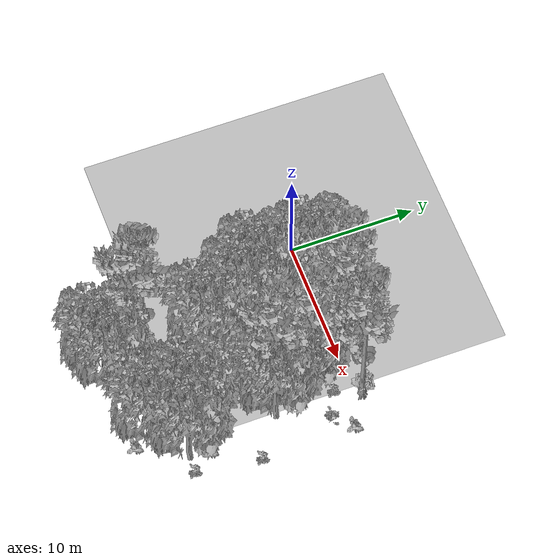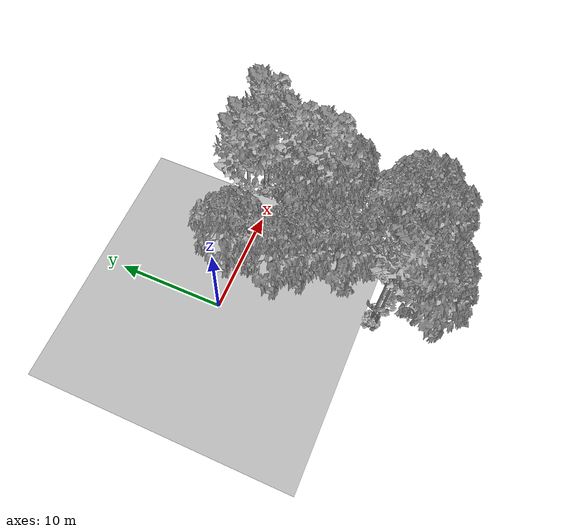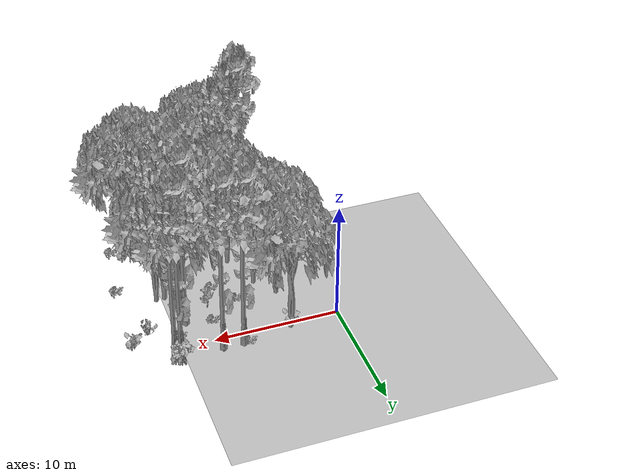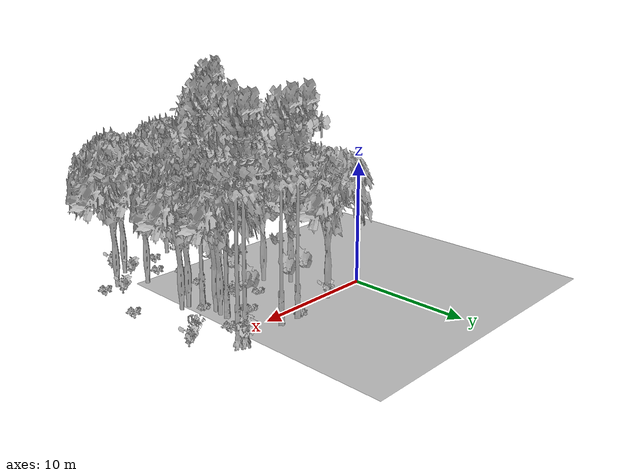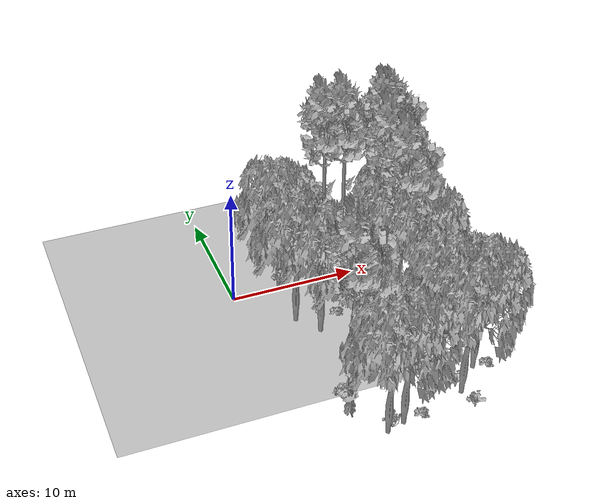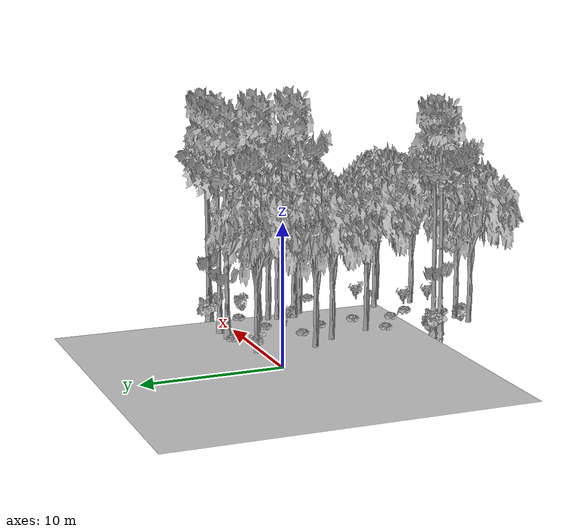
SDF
<sdf version="1.7">
 <world name="default">
  <model name="ground_plane">
   <static>1</static>
   <link name="link">
    <collision name="collision">
     <pose>-50 0 0 0 -0 0</pose>
     <geometry><plane><normal>0 0 1</normal><size>80 80</size></plane></geometry>
     <surface><contact><ode><min_depth>0.01</min_depth><max_vel>0</max_vel></ode></contact></surface>
    </collision>
    <visual name="grass">
     <cast_shadows>0</cast_shadows>
     <geometry>
      <mesh>
       <scale>0.46714285714285714 0.46714285714285714 0.1</scale>
       <uri>file://grass_plane/meshes/grass_plane.dae</uri>
      </mesh>
     </geometry>
    </visual>
   </link>
  </model>
  <model name="Tree 6">
   <static>1</static>
   <pose>7.984575427934473 1.1201667214124527 0 1.57079 -0 0</pose>
   <link name="link">
    <collision name="collision">
     <geometry><mesh><scale>3.5 5 3.5</scale><uri>model://tree_9/meshes/tree_9.obj</uri></mesh></geometry>
    </collision>
    <visual name="visual">
     <geometry><mesh><scale>3.5 5 3.5</scale><uri>model://tree_9/meshes/tree_9.obj</uri></mesh></geometry>
    </visual>
   </link>
  </model>
  <model name="Tree 10">
   <static>1</static>
   <pose>3.8633248040182124 0.3645302694113326 0 1.57079 -0 0</pose>
   <link name="link">
    <collision name="collision">
     <geometry><mesh><scale>3.5 5 3.5</scale><uri>model://tree_2/meshes/tree_2.obj</uri></mesh></geometry>
    </collision>
    <visual name="visual">
     <geometry><mesh><scale>3.5 5 3.5</scale><uri>model://tree_2/meshes/tree_2.obj</uri></mesh></geometry>
    </visual>
   </link>
  </model>
  <model name="Tree 53">
   <static>1</static>
   <pose>12.838177901826654 0.8803615121294044 0 1.57079 -0 0</pose>
   <link name="link">
    <collision name="collision">
     <geometry><mesh><scale>3.5 5 3.5</scale><uri>model://tree_9/meshes/tree_9.obj</uri></mesh></geometry>
    </collision>
    <visual name="visual">
     <geometry><mesh><scale>3.5 5 3.5</scale><uri>model://tree_9/meshes/tree_9.obj</uri></mesh></geometry>
    </visual>
   </link>
  </model>
  <model name="Tree 93">
   <static>1</static>
   <pose>4.125809670497382 -13.33799570000668 0 1.57079 -0 0</pose>
   <link name="link">
    <collision name="collision">
     <geometry><mesh><scale>3.5 5 3.5</scale><uri>model://tree_9/meshes/tree_9.obj</uri></mesh></geometry>
    </collision>
    <visual name="visual">
     <geometry><mesh><scale>3.5 5 3.5</scale><uri>model://tree_9/meshes/tree_9.obj</uri></mesh></geometry>
    </visual>
   </link>
  </model>
  <model name="Tree 195">
   <static>1</static>
   <pose>12.21662635143361 -6.158046860188229 0 1.57079 -0 0</pose>
   <link name="link">
    <collision name="collision">
     <geometry><mesh><scale>3.5 5 3.5</scale><uri>model://tree_2/meshes/tree_2.obj</uri></mesh></geometry>
    </collision>
    <visual name="visual">
     <geometry><mesh><scale>3.5 5 3.5</scale><uri>model://tree_2/meshes/tree_2.obj</uri></mesh></geometry>
    </visual>
   </link>
  </model>
  <model name="Tree 197">
   <static>1</static>
   <pose>3.920803441173426 -13.768204057965761 0 1.57079 -0 0</pose>
   <link name="link">
    <collision name="collision">
     <geometry><mesh><scale>3.5 5 3.5</scale><uri>model://tree_9/meshes/tree_9.obj</uri></mesh></geometry>
    </collision>
    <visual name="visual">
     <geometry><mesh><scale>3.5 5 3.5</scale><uri>model://tree_9/meshes/tree_9.obj</uri></mesh></geometry>
    </visual>
   </link>
  </model>
  <model name="Tree 207">
   <static>1</static>
   <pose>11.755005364283171 -12.144976929608724 0 1.57079 -0 0</pose>
   <link name="link">
    <collision name="collision">
     <geometry><mesh><scale>3.5 5 3.5</scale><uri>model://tree_2/meshes/tree_2.obj</uri></mesh></geometry>
    </collision>
    <visual name="visual">
     <geometry><mesh><scale>3.5 5 3.5</scale><uri>model://tree_2/meshes/tree_2.obj</uri></mesh></geometry>
    </visual>
   </link>
  </model>
  <model name="Tree 249">
   <static>1</static>
   <pose>11.34716732619416 -4.038949340278428 0 1.57079 -0 0</pose>
   <link name="link">
    <collision name="collision">
     <geometry><mesh><scale>3.5 5 3.5</scale><uri>model://tree_2/meshes/tree_2.obj</uri></mesh></geometry>
    </collision>
    <visual name="visual">
     <geometry><mesh><scale>3.5 5 3.5</scale><uri>model://tree_2/meshes/tree_2.obj</uri></mesh></geometry>
    </visual>
   </link>
  </model>
  <model name="Tree 254">
   <static>1</static>
   <pose>12.889114024892386 -6.121958227869143 0 1.57079 -0 0</pose>
   <link name="link">
    <collision name="collision">
     <geometry><mesh><scale>3.5 5 3.5</scale><uri>model://tree_2/meshes/tree_2.obj</uri></mesh></geometry>
    </collision>
    <visual name="visual">
     <geometry><mesh><scale>3.5 5 3.5</scale><uri>model://tree_2/meshes/tree_2.obj</uri></mesh></geometry>
    </visual>
   </link>
  </model>
  <model name="Tree 264">
   <static>1</static>
   <pose>11.468856106505733 -3.3601065697573063 0 1.57079 -0 0</pose>
   <link name="link">
    <collision name="collision">
     <geometry><mesh><scale>3.5 5 3.5</scale><uri>model://tree_2/meshes/tree_2.obj</uri></mesh></geometry>
    </collision>
    <visual name="visual">
     <geometry><mesh><scale>3.5 5 3.5</scale><uri>model://tree_2/meshes/tree_2.obj</uri></mesh></geometry>
    </visual>
   </link>
  </model>
  <model name="Tree 271">
   <static>1</static>
   <pose>9.623152904626195 1.1276366935439412 0 1.57079 -0 0</pose>
   <link name="link">
    <collision name="collision">
     <geometry><mesh><scale>3.5 5 3.5</scale><uri>model://tree_9/meshes/tree_9.obj</uri></mesh></geometry>
    </collision>
    <visual name="visual">
     <geometry><mesh><scale>3.5 5 3.5</scale><uri>model://tree_9/meshes/tree_9.obj</uri></mesh></geometry>
    </visual>
   </link>
  </model>
  <model name="Tree 307">
   <static>1</static>
   <pose>13.847687415509945 -13.28309531752329 0 1.57079 -0 0</pose>
   <link name="link">
    <collision name="collision">
     <geometry><mesh><scale>3.5 5 3.5</scale><uri>model://tree_2/meshes/tree_2.obj</uri></mesh></geometry>
    </collision>
    <visual name="visual">
     <geometry><mesh><scale>3.5 5 3.5</scale><uri>model://tree_2/meshes/tree_2.obj</uri></mesh></geometry>
    </visual>
   </link>
  </model>
  <model name="Tree 316">
   <static>1</static>
   <pose>4.939856887484318 -5.734312844137179 0 1.57079 -0 0</pose>
   <link name="link">
    <collision name="collision">
     <geometry><mesh><scale>3.5 5 3.5</scale><uri>model://tree_2/meshes/tree_2.obj</uri></mesh></geometry>
    </collision>
    <visual name="visual">
     <geometry><mesh><scale>3.5 5 3.5</scale><uri>model://tree_2/meshes/tree_2.obj</uri></mesh></geometry>
    </visual>
   </link>
  </model>
  <model name="Tree 331">
   <static>1</static>
   <pose>6.7029967831499135 -16.490209365333286 0 1.57079 -0 0</pose>
   <link name="link">
    <collision name="collision">
     <geometry><mesh><scale>3.5 5 3.5</scale><uri>model://tree_2/meshes/tree_2.obj</uri></mesh></geometry>
    </collision>
    <visual name="visual">
     <geometry><mesh><scale>3.5 5 3.5</scale><uri>model://tree_2/meshes/tree_2.obj</uri></mesh></geometry>
    </visual>
   </link>
  </model>
  <model name="Tree 387">
   <static>1</static>
   <pose>6.143898763858118 -8.948495521146782 0 1.57079 -0 0</pose>
   <link name="link">
    <collision name="collision">
     <geometry><mesh><scale>3.5 5 3.5</scale><uri>model://tree_2/meshes/tree_2.obj</uri></mesh></geometry>
    </collision>
    <visual name="visual">
     <geometry><mesh><scale>3.5 5 3.5</scale><uri>model://tree_2/meshes/tree_2.obj</uri></mesh></geometry>
    </visual>
   </link>
  </model>
  <model name="Tree 423">
   <static>1</static>
   <pose>3.6233072430310784 -3.9435309150863986 0 1.57079 -0 0</pose>
   <link name="link">
    <collision name="collision">
     <geometry><mesh><scale>3.5 5 3.5</scale><uri>model://tree_2/meshes/tree_2.obj</uri></mesh></geometry>
    </collision>
    <visual name="visual">
     <geometry><mesh><scale>3.5 5 3.5</scale><uri>model://tree_2/meshes/tree_2.obj</uri></mesh></geometry>
    </visual>
   </link>
  </model>
  <model name="Tree 437">
   <static>1</static>
   <pose>5.312405824703063 -16.89592330109204 0 1.57079 -0 0</pose>
   <link name="link">
    <collision name="collision">
     <geometry><mesh><scale>3.5 5 3.5</scale><uri>model://tree_2/meshes/tree_2.obj</uri></mesh></geometry>
    </collision>
    <visual name="visual">
     <geometry><mesh><scale>3.5 5 3.5</scale><uri>model://tree_2/meshes/tree_2.obj</uri></mesh></geometry>
    </visual>
   </link>
  </model>
  <model name="Tree 467">
   <static>1</static>
   <pose>13.276392949653399 0.6408558550678194 0 1.57079 -0 0</pose>
   <link name="link">
    <collision name="collision">
     <geometry><mesh><scale>3.5 5 3.5</scale><uri>model://tree_9/meshes/tree_9.obj</uri></mesh></geometry>
    </collision>
    <visual name="visual">
     <geometry><mesh><scale>3.5 5 3.5</scale><uri>model://tree_9/meshes/tree_9.obj</uri></mesh></geometry>
    </visual>
   </link>
  </model>
  <model name="Tree 555">
   <static>1</static>
   <pose>11.853967236001928 -15.271320733900726 0 1.57079 -0 0</pose>
   <link name="link">
    <collision name="collision">
     <geometry><mesh><scale>3.5 5 3.5</scale><uri>model://tree_2/meshes/tree_2.obj</uri></mesh></geometry>
    </collision>
    <visual name="visual">
     <geometry><mesh><scale>3.5 5 3.5</scale><uri>model://tree_2/meshes/tree_2.obj</uri></mesh></geometry>
    </visual>
   </link>
  </model>
  <model name="Tree 556">
   <static>1</static>
   <pose>11.551221790585494 -2.582297508866766 0 1.57079 -0 0</pose>
   <link name="link">
    <collision name="collision">
     <geometry><mesh><scale>3.5 5 3.5</scale><uri>model://tree_9/meshes/tree_9.obj</uri></mesh></geometry>
    </collision>
    <visual name="visual">
     <geometry><mesh><scale>3.5 5 3.5</scale><uri>model://tree_9/meshes/tree_9.obj</uri></mesh></geometry>
    </visual>
   </link>
  </model>
  <model name="Tree 636">
   <static>1</static>
   <pose>11.563145512419382 -5.409839446688103 0 1.57079 -0 0</pose>
   <link name="link">
    <collision name="collision">
     <geometry><mesh><scale>3.5 5 3.5</scale><uri>model://tree_9/meshes/tree_9.obj</uri></mesh></geometry>
    </collision>
    <visual name="visual">
     <geometry><mesh><scale>3.5 5 3.5</scale><uri>model://tree_9/meshes/tree_9.obj</uri></mesh></geometry>
    </visual>
   </link>
  </model>
  <model name="Bush 5">
   <static>1</static>
   <pose>7.487523154457364 0.9213588212949091 0 1.57079 -0 0</pose>
   <link name="link">
    <collision name="collision">
     <geometry><mesh><scale>2 2 2</scale><uri>model://bush_2/meshes/bush_2.obj</uri></mesh></geometry>
     <surface><contact><collide_without_contact>false</collide_without_contact></contact></surface>
    </collision>
    <visual name="visual">
     <geometry><mesh><scale>2 2 2</scale><uri>model://bush_2/meshes/bush_2.obj</uri></mesh></geometry>
    </visual>
   </link>
  </model>
  <model name="Bush 73">
   <static>1</static>
   <pose>4.120122286206737 -13.099473698994242 0 1.57079 -0 0</pose>
   <link name="link">
    <collision name="collision">
     <geometry><mesh><scale>2 2 2</scale><uri>model://bush_4/meshes/bush_4.obj</uri></mesh></geometry>
     <surface><contact><collide_without_contact>false</collide_without_contact></contact></surface>
    </collision>
    <visual name="visual">
     <geometry><mesh><scale>2 2 2</scale><uri>model://bush_4/meshes/bush_4.obj</uri></mesh></geometry>
    </visual>
   </link>
  </model>
  <model name="Bush 93">
   <static>1</static>
   <pose>8.442872508784852 -6.208696451120581 0 1.57079 -0 0</pose>
   <link name="link">
    <collision name="collision">
     <geometry><mesh><scale>2 2 2</scale><uri>model://bush_2/meshes/bush_2.obj</uri></mesh></geometry>
     <surface><contact><collide_without_contact>false</collide_without_contact></contact></surface>
    </collision>
    <visual name="visual">
     <geometry><mesh><scale>2 2 2</scale><uri>model://bush_2/meshes/bush_2.obj</uri></mesh></geometry>
    </visual>
   </link>
  </model>
  <model name="Bush 102">
   <static>1</static>
   <pose>15.768416401008501 -8.260653008419531 0 1.57079 -0 0</pose>
   <link name="link">
    <collision name="collision">
     <geometry><mesh><scale>2 2 2</scale><uri>model://bush_2/meshes/bush_2.obj</uri></mesh></geometry>
     <surface><contact><collide_without_contact>false</collide_without_contact></contact></surface>
    </collision>
    <visual name="visual">
     <geometry><mesh><scale>2 2 2</scale><uri>model://bush_2/meshes/bush_2.obj</uri></mesh></geometry>
    </visual>
   </link>
  </model>
  <model name="Bush 107">
   <static>1</static>
   <pose>8.327439615525734 -16.19863364809988 0 1.57079 -0 0</pose>
   <link name="link">
    <collision name="collision">
     <geometry><mesh><scale>2 2 2</scale><uri>model://bush_2/meshes/bush_2.obj</uri></mesh></geometry>
     <surface><contact><collide_without_contact>false</collide_without_contact></contact></surface>
    </collision>
    <visual name="visual">
     <geometry><mesh><scale>2 2 2</scale><uri>model://bush_2/meshes/bush_2.obj</uri></mesh></geometry>
    </visual>
   </link>
  </model>
  <model name="Bush 122">
   <static>1</static>
   <pose>14.642053766647678 -2.39577242690369 0 1.57079 -0 0</pose>
   <link name="link">
    <collision name="collision">
     <geometry><mesh><scale>2 2 2</scale><uri>model://bush_4/meshes/bush_4.obj</uri></mesh></geometry>
     <surface><contact><collide_without_contact>false</collide_without_contact></contact></surface>
    </collision>
    <visual name="visual">
     <geometry><mesh><scale>2 2 2</scale><uri>model://bush_4/meshes/bush_4.obj</uri></mesh></geometry>
    </visual>
   </link>
  </model>
  <model name="Bush 129">
   <static>1</static>
   <pose>11.784862822851146 -14.60516428069915 0 1.57079 -0 0</pose>
   <link name="link">
    <collision name="collision">
     <geometry><mesh><scale>2 2 2</scale><uri>model://bush_0/meshes/bush_0.obj</uri></mesh></geometry>
     <surface><contact><collide_without_contact>false</collide_without_contact></contact></surface>
    </collision>
    <visual name="visual">
     <geometry><mesh><scale>2 2 2</scale><uri>model://bush_0/meshes/bush_0.obj</uri></mesh></geometry>
    </visual>
   </link>
  </model>
  <model name="Bush 160">
   <static>1</static>
   <pose>6.960395803383015 -4.259043947179904 0 1.57079 -0 0</pose>
   <link name="link">
    <collision name="collision">
     <geometry><mesh><scale>2 2 2</scale><uri>model://bush_2/meshes/bush_2.obj</uri></mesh></geometry>
     <surface><contact><collide_without_contact>false</collide_without_contact></contact></surface>
    </collision>
    <visual name="visual">
     <geometry><mesh><scale>2 2 2</scale><uri>model://bush_2/meshes/bush_2.obj</uri></mesh></geometry>
    </visual>
   </link>
  </model>
  <model name="Bush 176">
   <static>1</static>
   <pose>9.771657911059052 -13.771110883451627 0 1.57079 -0 0</pose>
   <link name="link">
    <collision name="collision">
     <geometry><mesh><scale>2 2 2</scale><uri>model://bush_2/meshes/bush_2.obj</uri></mesh></geometry>
     <surface><contact><collide_without_contact>false</collide_without_contact></contact></surface>
    </collision>
    <visual name="visual">
     <geometry><mesh><scale>2 2 2</scale><uri>model://bush_2/meshes/bush_2.obj</uri></mesh></geometry>
    </visual>
   </link>
  </model>
  <model name="Bush 260">
   <static>1</static>
   <pose>12.396392596737861 -1.3417523941423681 0 1.57079 -0 0</pose>
   <link name="link">
    <collision name="collision">
     <geometry><mesh><scale>2 2 2</scale><uri>model://bush_2/meshes/bush_2.obj</uri></mesh></geometry>
     <surface><contact><collide_without_contact>false</collide_without_contact></contact></surface>
    </collision>
    <visual name="visual">
     <geometry><mesh><scale>2 2 2</scale><uri>model://bush_2/meshes/bush_2.obj</uri></mesh></geometry>
    </visual>
   </link>
  </model>
  <model name="Bush 338">
   <static>1</static>
   <pose>12.178267559816568 -16.862433686625693 0 1.57079 -0 0</pose>
   <link name="link">
    <collision name="collision">
     <geometry><mesh><scale>2 2 2</scale><uri>model://bush_0/meshes/bush_0.obj</uri></mesh></geometry>
     <surface><contact><collide_without_contact>false</collide_without_contact></contact></surface>
    </collision>
    <visual name="visual">
     <geometry><mesh><scale>2 2 2</scale><uri>model://bush_0/meshes/bush_0.obj</uri></mesh></geometry>
    </visual>
   </link>
  </model>
  <model name="Bush 348">
   <static>1</static>
   <pose>15.03637207189432 -13.31038366020482 0 1.57079 -0 0</pose>
   <link name="link">
    <collision name="collision">
     <geometry><mesh><scale>2 2 2</scale><uri>model://bush_2/meshes/bush_2.obj</uri></mesh></geometry>
     <surface><contact><collide_without_contact>false</collide_without_contact></contact></surface>
    </collision>
    <visual name="visual">
     <geometry><mesh><scale>2 2 2</scale><uri>model://bush_2/meshes/bush_2.obj</uri></mesh></geometry>
    </visual>
   </link>
  </model>
  <model name="Bush 352">
   <static>1</static>
   <pose>3.848883525522851 -13.399814796790757 0 1.57079 -0 0</pose>
   <link name="link">
    <collision name="collision">
     <geometry><mesh><scale>2 2 2</scale><uri>model://bush_1/meshes/bush_1.obj</uri></mesh></geometry>
     <surface><contact><collide_without_contact>false</collide_without_contact></contact></surface>
    </collision>
    <visual name="visual">
     <geometry><mesh><scale>2 2 2</scale><uri>model://bush_1/meshes/bush_1.obj</uri></mesh></geometry>
    </visual>
   </link>
  </model>
  <model name="Bush 359">
   <static>1</static>
   <pose>16.231839741109518 -1.0088113513543249 0 1.57079 -0 0</pose>
   <link name="link">
    <collision name="collision">
     <geometry><mesh><scale>2 2 2</scale><uri>model://bush_0/meshes/bush_0.obj</uri></mesh></geometry>
     <surface><contact><collide_without_contact>false</collide_without_contact></contact></surface>
    </collision>
    <visual name="visual">
     <geometry><mesh><scale>2 2 2</scale><uri>model://bush_0/meshes/bush_0.obj</uri></mesh></geometry>
    </visual>
   </link>
  </model>
  <model name="Bush 361">
   <static>1</static>
   <pose>14.402513819332498 -11.749564891462441 0 1.57079 -0 0</pose>
   <link name="link">
    <collision name="collision">
     <geometry><mesh><scale>2 2 2</scale><uri>model://bush_0/meshes/bush_0.obj</uri></mesh></geometry>
     <surface><contact><collide_without_contact>false</collide_without_contact></contact></surface>
    </collision>
    <visual name="visual">
     <geometry><mesh><scale>2 2 2</scale><uri>model://bush_0/meshes/bush_0.obj</uri></mesh></geometry>
    </visual>
   </link>
  </model>
  <model name="Bush 415">
   <static>1</static>
   <pose>11.76324891851273 -5.056128451539308 0 1.57079 -0 0</pose>
   <link name="link">
    <collision name="collision">
     <geometry><mesh><scale>2 2 2</scale><uri>model://bush_2/meshes/bush_2.obj</uri></mesh></geometry>
     <surface><contact><collide_without_contact>false</collide_without_contact></contact></surface>
    </collision>
    <visual name="visual">
     <geometry><mesh><scale>2 2 2</scale><uri>model://bush_2/meshes/bush_2.obj</uri></mesh></geometry>
    </visual>
   </link>
  </model>
  <model name="Bush 424">
   <static>1</static>
   <pose>4.069844366982274 0.3599811962839681 0 1.57079 -0 0</pose>
   <link name="link">
    <collision name="collision">
     <geometry><mesh><scale>2 2 2</scale><uri>model://bush_0/meshes/bush_0.obj</uri></mesh></geometry>
     <surface><contact><collide_without_contact>false</collide_without_contact></contact></surface>
    </collision>
    <visual name="visual">
     <geometry><mesh><scale>2 2 2</scale><uri>model://bush_0/meshes/bush_0.obj</uri></mesh></geometry>
    </visual>
   </link>
  </model>
  <model name="Bush 445">
   <static>1</static>
   <pose>9.442282788394884 -2.3354888762680446 0 1.57079 -0 0</pose>
   <link name="link">
    <collision name="collision">
     <geometry><mesh><scale>2 2 2</scale><uri>model://bush_2/meshes/bush_2.obj</uri></mesh></geometry>
     <surface><contact><collide_without_contact>false</collide_without_contact></contact></surface>
    </collision>
    <visual name="visual">
     <geometry><mesh><scale>2 2 2</scale><uri>model://bush_2/meshes/bush_2.obj</uri></mesh></geometry>
    </visual>
   </link>
  </model>
  <model name="Bush 474">
   <static>1</static>
   <pose>9.028673745285573 -9.117631408614724 0 1.57079 -0 0</pose>
   <link name="link">
    <collision name="collision">
     <geometry><mesh><scale>2 2 2</scale><uri>model://bush_2/meshes/bush_2.obj</uri></mesh></geometry>
     <surface><contact><collide_without_contact>false</collide_without_contact></contact></surface>
    </collision>
    <visual name="visual">
     <geometry><mesh><scale>2 2 2</scale><uri>model://bush_2/meshes/bush_2.obj</uri></mesh></geometry>
    </visual>
   </link>
  </model>
  <model name="Bush 494">
   <static>1</static>
   <pose>9.436488977444817 -3.938027937922051 0 1.57079 -0 0</pose>
   <link name="link">
    <collision name="collision">
     <geometry><mesh><scale>2 2 2</scale><uri>model://bush_5/meshes/bush_5.obj</uri></mesh></geometry>
     <surface><contact><collide_without_contact>false</collide_without_contact></contact></surface>
    </collision>
    <visual name="visual">
     <geometry><mesh><scale>2 2 2</scale><uri>model://bush_5/meshes/bush_5.obj</uri></mesh></geometry>
    </visual>
   </link>
  </model>
  <model name="Bush 520">
   <static>1</static>
   <pose>6.095666539341771 -10.475415842376059 0 1.57079 -0 0</pose>
   <link name="link">
    <collision name="collision">
     <geometry><mesh><scale>2 2 2</scale><uri>model://bush_2/meshes/bush_2.obj</uri></mesh></geometry>
     <surface><contact><collide_without_contact>false</collide_without_contact></contact></surface>
    </collision>
    <visual name="visual">
     <geometry><mesh><scale>2 2 2</scale><uri>model://bush_2/meshes/bush_2.obj</uri></mesh></geometry>
    </visual>
   </link>
  </model>
  <model name="Bush 614">
   <static>1</static>
   <pose>12.870596688688664 0.8223142470936438 0 1.57079 -0 0</pose>
   <link name="link">
    <collision name="collision">
     <geometry><mesh><scale>2 2 2</scale><uri>model://bush_1/meshes/bush_1.obj</uri></mesh></geometry>
     <surface><contact><collide_without_contact>false</collide_without_contact></contact></surface>
    </collision>
    <visual name="visual">
     <geometry><mesh><scale>2 2 2</scale><uri>model://bush_1/meshes/bush_1.obj</uri></mesh></geometry>
    </visual>
   </link>
  </model>
  <model name="Bush 620">
   <static>1</static>
   <pose>5.942091874822452 -16.519815784089946 0 1.57079 -0 0</pose>
   <link name="link">
    <collision name="collision">
     <geometry><mesh><scale>2 2 2</scale><uri>model://bush_4/meshes/bush_4.obj</uri></mesh></geometry>
     <surface><contact><collide_without_contact>false</collide_without_contact></contact></surface>
    </collision>
    <visual name="visual">
     <geometry><mesh><scale>2 2 2</scale><uri>model://bush_4/meshes/bush_4.obj</uri></mesh></geometry>
    </visual>
   </link>
  </model>
  <model name="Bush 631">
   <static>1</static>
   <pose>8.601979974070822 -12.039326841212919 0 1.57079 -0 0</pose>
   <link name="link">
    <collision name="collision">
     <geometry><mesh><scale>2 2 2</scale><uri>model://bush_2/meshes/bush_2.obj</uri></mesh></geometry>
     <surface><contact><collide_without_contact>false</collide_without_contact></contact></surface>
    </collision>
    <visual name="visual">
     <geometry><mesh><scale>2 2 2</scale><uri>model://bush_2/meshes/bush_2.obj</uri></mesh></geometry>
    </visual>
   </link>
  </model>
 </world>
</sdf>
